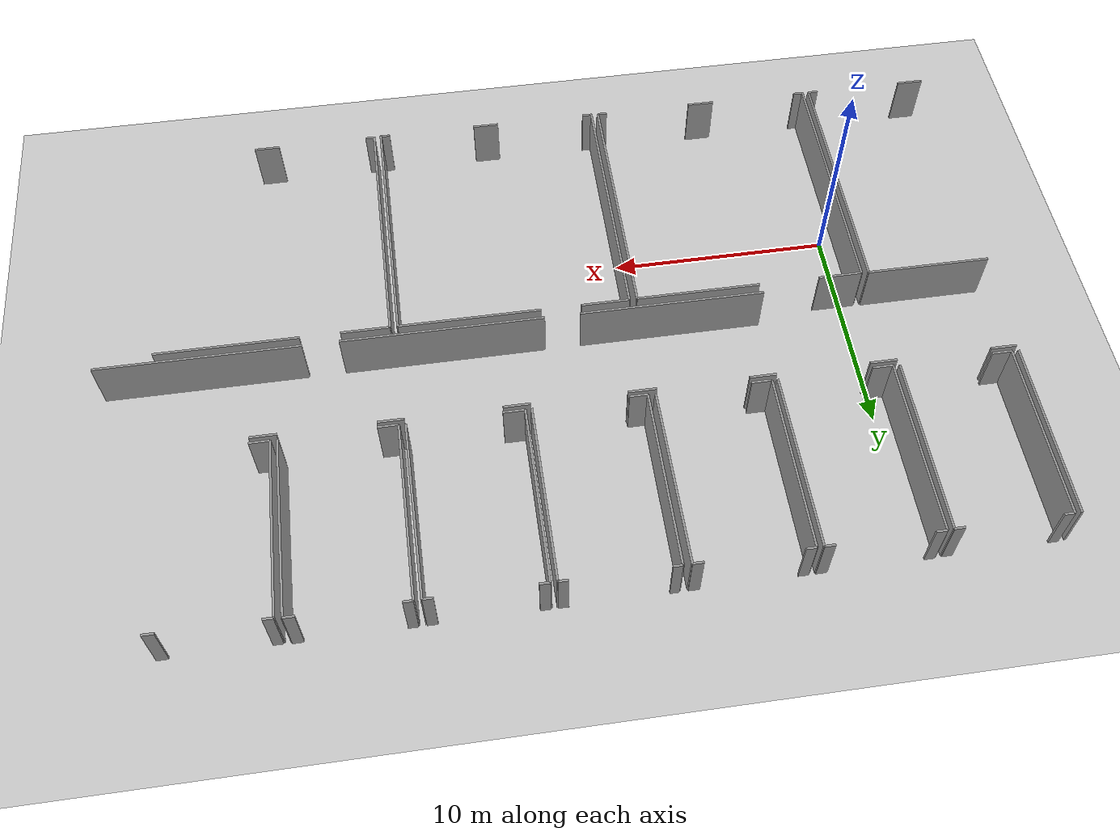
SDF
<sdf version="1.6">
 <world name="default">
  <model name="ground_plane">
   <static>1</static>
   <link name="link">
    <collision name="collision">
     <geometry><plane><normal>0 0 1</normal><size>100 100</size></plane></geometry>
     <surface><friction><ode><mu>100</mu><mu2>50</mu2></ode></friction></surface>
    </collision>
    <visual name="visual">
     <cast_shadows>0</cast_shadows>
     <geometry><plane><normal>0 0 1</normal><size>100 100</size></plane></geometry>
     <material>
      <script><uri>file://media/materials/scripts/gazebo.material</uri><name>Gazebo/Grey</name></script>
     </material>
    </visual>
   </link>
  </model>
  <model name="50037765_PLAN3">
   <static>1</static>
   <link name="Wall_163">
    <collision name="Wall_163_Collision">
     <geometry><box><size>1.17685185774 0.1 2.5</size></box></geometry>
     <pose>0.588425928868 0 1.25 0 0 0</pose>
    </collision>
    <visual name="Wall_163_Visual">
     <pose>0.588425928868 0 1.25 0 0 0</pose>
     <geometry><box><size>1.17685185774 0.1 2.5</size></box></geometry>
     <material>
      <script><uri>file://media/materials/scripts/gazebo.material</uri><name>Gazebo/Grey</name></script>
      <ambient>1 1 1 1</ambient>
     </material>
    </visual>
    <pose>162.93330961 -12.5559926034 0 0 0 3.14159265359</pose>
   </link>
   <link name="Wall_164">
    <collision name="Wall_164_Collision">
     <geometry><box><size>1.16490541339 0.1 2.5</size></box></geometry>
     <pose>0.582452706696 0 1.25 0 0 0</pose>
    </collision>
    <visual name="Wall_164_Visual">
     <pose>0.582452706696 0 1.25 0 0 0</pose>
     <geometry><box><size>1.16490541339 0.1 2.5</size></box></geometry>
     <material>
      <script><uri>file://media/materials/scripts/gazebo.material</uri><name>Gazebo/Grey</name></script>
      <ambient>1 1 1 1</ambient>
     </material>
    </visual>
    <pose>157.522332861 -12.5559926034 0 0 0 3.14159265359</pose>
   </link>
   <link name="Wall_165">
    <collision name="Wall_165_Collision">
     <geometry><box><size>1.20049056676 0.1 2.5</size></box></geometry>
     <pose>0.600245283379 0 1.25 0 0 0</pose>
    </collision>
    <visual name="Wall_165_Visual">
     <pose>0.600245283379 0 1.25 0 0 0</pose>
     <geometry><box><size>1.20049056676 0.1 2.5</size></box></geometry>
     <material>
      <script><uri>file://media/materials/scripts/gazebo.material</uri><name>Gazebo/Grey</name></script>
      <ambient>1 1 1 1</ambient>
     </material>
    </visual>
    <pose>152.12838615 -12.5559926034 0 0 0 3.14159265359</pose>
   </link>
   <link name="Wall_166">
    <collision name="Wall_166_Collision">
     <geometry><box><size>1.26428966315 0.1 2.5</size></box></geometry>
     <pose>0.632144831574 0 1.25 0 0 0</pose>
    </collision>
    <visual name="Wall_166_Visual">
     <pose>0.632144831574 0 1.25 0 0 0</pose>
     <geometry><box><size>1.26428966315 0.1 2.5</size></box></geometry>
     <material>
      <script><uri>file://media/materials/scripts/gazebo.material</uri><name>Gazebo/Grey</name></script>
      <ambient>1 1 1 1</ambient>
     </material>
    </visual>
    <pose>146.70266698 -12.5559926034 0 0 0 3.14159265359</pose>
   </link>
   <link name="Wall_167">
    <collision name="Wall_167_Collision">
     <geometry><box><size>1.19769459042 0.1 2.5</size></box></geometry>
     <pose>0.598847295211 0 1.25 0 0 0</pose>
    </collision>
    <visual name="Wall_167_Visual">
     <pose>0.598847295211 0 1.25 0 0 0</pose>
     <geometry><box><size>1.19769459042 0.1 2.5</size></box></geometry>
     <material>
      <script><uri>file://media/materials/scripts/gazebo.material</uri><name>Gazebo/Grey</name></script>
      <ambient>1 1 1 1</ambient>
     </material>
    </visual>
    <pose>141.335663314 -12.5559926034 0 0 0 3.14159265359</pose>
   </link>
   <link name="Wall_168">
    <collision name="Wall_168_Collision">
     <geometry><box><size>1.21980822144 0.1 2.5</size></box></geometry>
     <pose>0.609904110721 0 1.25 0 0 0</pose>
    </collision>
    <visual name="Wall_168_Visual">
     <pose>0.609904110721 0 1.25 0 0 0</pose>
     <geometry><box><size>1.21980822144 0.1 2.5</size></box></geometry>
     <material>
      <script><uri>file://media/materials/scripts/gazebo.material</uri><name>Gazebo/Grey</name></script>
      <ambient>1 1 1 1</ambient>
     </material>
    </visual>
    <pose>135.95112125 -12.5559926034 0 0 0 3.14159265359</pose>
   </link>
   <link name="Wall_169">
    <collision name="Wall_169_Collision">
     <geometry><box><size>1.16439705406 0.1 2.5</size></box></geometry>
     <pose>0.582198527029 0 1.25 0 0 0</pose>
    </collision>
    <visual name="Wall_169_Visual">
     <pose>0.582198527029 0 1.25 0 0 0</pose>
     <geometry><box><size>1.16439705406 0.1 2.5</size></box></geometry>
     <material>
      <script><uri>file://media/materials/scripts/gazebo.material</uri><name>Gazebo/Grey</name></script>
      <ambient>1 1 1 1</ambient>
     </material>
    </visual>
    <pose>130.471261811 -12.5559926034 0 0 0 3.14159265359</pose>
   </link>
   <link name="Wall_180">
    <collision name="Wall_180_Collision">
     <geometry><box><size>8.41436369298 0.1 2.5</size></box></geometry>
     <pose>4.20718184649 0 1.25 0 0 0</pose>
    </collision>
    <visual name="Wall_180_Visual">
     <pose>4.20718184649 0 1.25 0 0 0</pose>
     <geometry><box><size>8.41436369298 0.1 2.5</size></box></geometry>
     <material>
      <script><uri>file://media/materials/scripts/gazebo.material</uri><name>Gazebo/Grey</name></script>
      <ambient>1 1 1 1</ambient>
     </material>
    </visual>
    <pose>139.712471961 -16.9823789946 0 0 0 0.0</pose>
   </link>
   <link name="Wall_181">
    <collision name="Wall_181_Collision">
     <geometry><box><size>9.18706988034 0.1 2.5</size></box></geometry>
     <pose>4.59353494017 0 1.25 0 0 0</pose>
    </collision>
    <visual name="Wall_181_Visual">
     <pose>4.59353494017 0 1.25 0 0 0</pose>
     <geometry><box><size>9.18706988034 0.1 2.5</size></box></geometry>
     <material>
      <script><uri>file://media/materials/scripts/gazebo.material</uri><name>Gazebo/Grey</name></script>
      <ambient>1 1 1 1</ambient>
     </material>
    </visual>
    <pose>149.740114 -16.9823789946 0 0 0 0.0</pose>
   </link>
   <link name="Wall_182">
    <collision name="Wall_182_Collision">
     <geometry><box><size>9.15351816431 0.1 2.5</size></box></geometry>
     <pose>4.57675908216 0 1.25 0 0 0</pose>
    </collision>
    <visual name="Wall_182_Visual">
     <pose>4.57675908216 0 1.25 0 0 0</pose>
     <geometry><box><size>9.15351816431 0.1 2.5</size></box></geometry>
     <material>
      <script><uri>file://media/materials/scripts/gazebo.material</uri><name>Gazebo/Grey</name></script>
      <ambient>1 1 1 1</ambient>
     </material>
    </visual>
    <pose>160.566388552 -16.9823789946 0 0 0 0.0</pose>
   </link>
   <link name="Wall_203">
    <collision name="Wall_203_Collision">
     <geometry><box><size>8.07875446143 0.1 2.5</size></box></geometry>
     <pose>4.03937723072 0 1.25 0 0 0</pose>
    </collision>
    <visual name="Wall_203_Visual">
     <pose>4.03937723072 0 1.25 0 0 0</pose>
     <geometry><box><size>8.07875446143 0.1 2.5</size></box></geometry>
     <material>
      <script><uri>file://media/materials/scripts/gazebo.material</uri><name>Gazebo/Grey</name></script>
      <ambient>1 1 1 1</ambient>
     </material>
    </visual>
    <pose>129.315252686 -4.21399386156 0 0 0 -1.57233800115</pose>
   </link>
   <link name="Wall_204">
    <collision name="Wall_204_Collision">
     <geometry><box><size>0.897254224148 0.1 2.5</size></box></geometry>
     <pose>0.448627112074 0 1.25 0 0 0</pose>
    </collision>
    <visual name="Wall_204_Visual">
     <pose>0.448627112074 0 1.25 0 0 0</pose>
     <geometry><box><size>0.897254224148 0.1 2.5</size></box></geometry>
     <material>
      <script><uri>file://media/materials/scripts/gazebo.material</uri><name>Gazebo/Grey</name></script>
      <ambient>1 1 1 1</ambient>
     </material>
    </visual>
    <pose>130.506084426 -12.2932979176 0 0 0 3.14159265359</pose>
   </link>
   <link name="Wall_205">
    <collision name="Wall_205_Collision">
     <geometry><box><size>8.06018974512 0.1 2.5</size></box></geometry>
     <pose>4.03009487256 0 1.25 0 0 0</pose>
    </collision>
    <visual name="Wall_205_Visual">
     <pose>4.03009487256 0 1.25 0 0 0</pose>
     <geometry><box><size>8.06018974512 0.1 2.5</size></box></geometry>
     <material>
      <script><uri>file://media/materials/scripts/gazebo.material</uri><name>Gazebo/Grey</name></script>
      <ambient>1 1 1 1</ambient>
     </material>
    </visual>
    <pose>129.608830202 -12.2932979176 0 0 0 1.57079632679</pose>
   </link>
   <link name="Wall_206">
    <collision name="Wall_206_Collision">
     <geometry><box><size>0.451931447744 0.1 2.5</size></box></geometry>
     <pose>0.225965723872 0 1.25 0 0 0</pose>
    </collision>
    <visual name="Wall_206_Visual">
     <pose>0.225965723872 0 1.25 0 0 0</pose>
     <geometry><box><size>0.451931447744 0.1 2.5</size></box></geometry>
     <material>
      <script><uri>file://media/materials/scripts/gazebo.material</uri><name>Gazebo/Grey</name></script>
      <ambient>1 1 1 1</ambient>
     </material>
    </visual>
    <pose>129.608830202 -4.23310817251 0 0 0 0.0</pose>
   </link>
   <link name="Wall_207">
    <collision name="Wall_207_Collision">
     <geometry><box><size>0.468453126092 0.1 2.5</size></box></geometry>
     <pose>0.234226563046 0 1.25 0 0 0</pose>
    </collision>
    <visual name="Wall_207_Visual">
     <pose>0.234226563046 0 1.25 0 0 0</pose>
     <geometry><box><size>0.468453126092 0.1 2.5</size></box></geometry>
     <material>
      <script><uri>file://media/materials/scripts/gazebo.material</uri><name>Gazebo/Grey</name></script>
      <ambient>1 1 1 1</ambient>
     </material>
    </visual>
    <pose>134.22676639 -4.23310817251 0 0 0 0.0</pose>
   </link>
   <link name="Wall_208">
    <collision name="Wall_208_Collision">
     <geometry><box><size>8.02666344706 0.1 2.5</size></box></geometry>
     <pose>4.01333172353 0 1.25 0 0 0</pose>
    </collision>
    <visual name="Wall_208_Visual">
     <pose>4.01333172353 0 1.25 0 0 0</pose>
     <geometry><box><size>8.02666344706 0.1 2.5</size></box></geometry>
     <material>
      <script><uri>file://media/materials/scripts/gazebo.material</uri><name>Gazebo/Grey</name></script>
      <ambient>1 1 1 1</ambient>
     </material>
    </visual>
    <pose>134.695219516 -4.23310817251 0 0 0 -1.57079632679</pose>
   </link>
   <link name="Wall_209">
    <collision name="Wall_209_Collision">
     <geometry><box><size>0.930043401178 0.1 2.5</size></box></geometry>
     <pose>0.465021700589 0 1.25 0 0 0</pose>
    </collision>
    <visual name="Wall_209_Visual">
     <pose>0.465021700589 0 1.25 0 0 0</pose>
     <geometry><box><size>0.930043401178 0.1 2.5</size></box></geometry>
     <material>
      <script><uri>file://media/materials/scripts/gazebo.material</uri><name>Gazebo/Grey</name></script>
      <ambient>1 1 1 1</ambient>
     </material>
    </visual>
    <pose>135.919348792 -12.2932979176 0 0 0 3.14159265359</pose>
   </link>
   <link name="Wall_210">
    <collision name="Wall_210_Collision">
     <geometry><box><size>8.08781907491 0.1 2.5</size></box></geometry>
     <pose>4.04390953746 0 1.25 0 0 0</pose>
    </collision>
    <visual name="Wall_210_Visual">
     <pose>4.04390953746 0 1.25 0 0 0</pose>
     <geometry><box><size>8.08781907491 0.1 2.5</size></box></geometry>
     <material>
      <script><uri>file://media/materials/scripts/gazebo.material</uri><name>Gazebo/Grey</name></script>
      <ambient>1 1 1 1</ambient>
     </material>
    </visual>
    <pose>134.989305391 -12.2932979176 0 0 0 1.57079632679</pose>
   </link>
   <link name="Wall_211">
    <collision name="Wall_211_Collision">
     <geometry><box><size>0.470740743094 0.1 2.5</size></box></geometry>
     <pose>0.235370371547 0 1.25 0 0 0</pose>
    </collision>
    <visual name="Wall_211_Visual">
     <pose>0.235370371547 0 1.25 0 0 0</pose>
     <geometry><box><size>0.470740743094 0.1 2.5</size></box></geometry>
     <material>
      <script><uri>file://media/materials/scripts/gazebo.material</uri><name>Gazebo/Grey</name></script>
      <ambient>1 1 1 1</ambient>
     </material>
    </visual>
    <pose>134.989305391 -4.20547884272 0 0 0 0.0</pose>
   </link>
   <link name="Wall_212">
    <collision name="Wall_212_Collision">
     <geometry><box><size>0.480145390769 0.1 2.5</size></box></geometry>
     <pose>0.240072695385 0 1.25 0 0 0</pose>
    </collision>
    <visual name="Wall_212_Visual">
     <pose>0.240072695385 0 1.25 0 0 0</pose>
     <geometry><box><size>0.480145390769 0.1 2.5</size></box></geometry>
     <material>
      <script><uri>file://media/materials/scripts/gazebo.material</uri><name>Gazebo/Grey</name></script>
      <ambient>1 1 1 1</ambient>
     </material>
    </visual>
    <pose>139.617662945 -4.20547884272 0 0 0 0.0</pose>
   </link>
   <link name="Wall_213">
    <collision name="Wall_213_Collision">
     <geometry><box><size>8.08797724418 0.1 2.5</size></box></geometry>
     <pose>4.04398862209 0 1.25 0 0 0</pose>
    </collision>
    <visual name="Wall_213_Visual">
     <pose>4.04398862209 0 1.25 0 0 0</pose>
     <geometry><box><size>8.08797724418 0.1 2.5</size></box></geometry>
     <material>
      <script><uri>file://media/materials/scripts/gazebo.material</uri><name>Gazebo/Grey</name></script>
      <ambient>1 1 1 1</ambient>
     </material>
    </visual>
    <pose>140.097808336 -4.20547884272 0 0 0 -1.5645423424</pose>
   </link>
   <link name="Wall_214">
    <collision name="Wall_214_Collision">
     <geometry><box><size>0.909963207493 0.1 2.5</size></box></geometry>
     <pose>0.454981603747 0 1.25 0 0 0</pose>
    </collision>
    <visual name="Wall_214_Visual">
     <pose>0.454981603747 0 1.25 0 0 0</pose>
     <geometry><box><size>0.909963207493 0.1 2.5</size></box></geometry>
     <material>
      <script><uri>file://media/materials/scripts/gazebo.material</uri><name>Gazebo/Grey</name></script>
      <ambient>1 1 1 1</ambient>
     </material>
    </visual>
    <pose>141.311007886 -12.2817581608 0 0 0 3.14159265359</pose>
   </link>
   <link name="Wall_215">
    <collision name="Wall_215_Collision">
     <geometry><box><size>8.0768385133 0.1 2.5</size></box></geometry>
     <pose>4.03841925665 0 1.25 0 0 0</pose>
    </collision>
    <visual name="Wall_215_Visual">
     <pose>4.03841925665 0 1.25 0 0 0</pose>
     <geometry><box><size>8.0768385133 0.1 2.5</size></box></geometry>
     <material>
      <script><uri>file://media/materials/scripts/gazebo.material</uri><name>Gazebo/Grey</name></script>
      <ambient>1 1 1 1</ambient>
     </material>
    </visual>
    <pose>140.401044678 -12.2817581608 0 0 0 1.57079632679</pose>
   </link>
   <link name="Wall_216">
    <collision name="Wall_216_Collision">
     <geometry><box><size>0.451168908743 0.1 2.5</size></box></geometry>
     <pose>0.225584454372 0 1.25 0 0 0</pose>
    </collision>
    <visual name="Wall_216_Visual">
     <pose>0.225584454372 0 1.25 0 0 0</pose>
     <geometry><box><size>0.451168908743 0.1 2.5</size></box></geometry>
     <material>
      <script><uri>file://media/materials/scripts/gazebo.material</uri><name>Gazebo/Grey</name></script>
      <ambient>1 1 1 1</ambient>
     </material>
    </visual>
    <pose>140.401044678 -4.20491964745 0 0 0 0.0</pose>
   </link>
   <link name="Wall_217">
    <collision name="Wall_217_Collision">
     <geometry><box><size>0.483449726439 0.1 2.5</size></box></geometry>
     <pose>0.24172486322 0 1.25 0 0 0</pose>
    </collision>
    <visual name="Wall_217_Visual">
     <pose>0.24172486322 0 1.25 0 0 0</pose>
     <geometry><box><size>0.483449726439 0.1 2.5</size></box></geometry>
     <material>
      <script><uri>file://media/materials/scripts/gazebo.material</uri><name>Gazebo/Grey</name></script>
      <ambient>1 1 1 1</ambient>
     </material>
    </visual>
    <pose>145.006017704 -4.20491964745 0 0 0 0.0</pose>
   </link>
   <link name="Wall_218">
    <collision name="Wall_218_Collision">
     <geometry><box><size>8.0769582147 0.1 2.5</size></box></geometry>
     <pose>4.03847910735 0 1.25 0 0 0</pose>
    </collision>
    <visual name="Wall_218_Visual">
     <pose>4.03847910735 0 1.25 0 0 0</pose>
     <geometry><box><size>8.0769582147 0.1 2.5</size></box></geometry>
     <material>
      <script><uri>file://media/materials/scripts/gazebo.material</uri><name>Gazebo/Grey</name></script>
      <ambient>1 1 1 1</ambient>
     </material>
    </visual>
    <pose>145.48946743 -4.20491964745 0 0 0 -1.5653520372</pose>
   </link>
   <link name="Wall_219">
    <collision name="Wall_219_Collision">
     <geometry><box><size>0.813120754405 0.1 2.5</size></box></geometry>
     <pose>0.406560377203 0 1.25 0 0 0</pose>
    </collision>
    <visual name="Wall_219_Visual">
     <pose>0.406560377203 0 1.25 0 0 0</pose>
     <geometry><box><size>0.813120754405 0.1 2.5</size></box></geometry>
     <material>
      <script><uri>file://media/materials/scripts/gazebo.material</uri><name>Gazebo/Grey</name></script>
      <ambient>1 1 1 1</ambient>
     </material>
    </visual>
    <pose>146.676232295 -12.3185633765 0 0 0 3.14159265359</pose>
   </link>
   <link name="Wall_220">
    <collision name="Wall_220_Collision">
     <geometry><box><size>8.12368382591 0.1 2.5</size></box></geometry>
     <pose>4.06184191296 0 1.25 0 0 0</pose>
    </collision>
    <visual name="Wall_220_Visual">
     <pose>4.06184191296 0 1.25 0 0 0</pose>
     <geometry><box><size>8.12368382591 0.1 2.5</size></box></geometry>
     <material>
      <script><uri>file://media/materials/scripts/gazebo.material</uri><name>Gazebo/Grey</name></script>
      <ambient>1 1 1 1</ambient>
     </material>
    </visual>
    <pose>145.86311154 -12.3185633765 0 0 0 1.57079632679</pose>
   </link>
   <link name="Wall_221">
    <collision name="Wall_221_Collision">
     <geometry><box><size>0.403637311033 0.1 2.5</size></box></geometry>
     <pose>0.201818655517 0 1.25 0 0 0</pose>
    </collision>
    <visual name="Wall_221_Visual">
     <pose>0.201818655517 0 1.25 0 0 0</pose>
     <geometry><box><size>0.403637311033 0.1 2.5</size></box></geometry>
     <material>
      <script><uri>file://media/materials/scripts/gazebo.material</uri><name>Gazebo/Grey</name></script>
      <ambient>1 1 1 1</ambient>
     </material>
    </visual>
    <pose>145.86311154 -4.19487955061 0 0 0 0.0</pose>
   </link>
   <link name="Wall_222">
    <collision name="Wall_222_Collision">
     <geometry><box><size>0.448881291741 0.1 2.5</size></box></geometry>
     <pose>0.224440645871 0 1.25 0 0 0</pose>
    </collision>
    <visual name="Wall_222_Visual">
     <pose>0.224440645871 0 1.25 0 0 0</pose>
     <geometry><box><size>0.448881291741 0.1 2.5</size></box></geometry>
     <material>
      <script><uri>file://media/materials/scripts/gazebo.material</uri><name>Gazebo/Grey</name></script>
      <ambient>1 1 1 1</ambient>
     </material>
    </visual>
    <pose>150.452325426 -4.19487955061 0 0 0 0.0</pose>
   </link>
   <link name="Wall_223">
    <collision name="Wall_223_Collision">
     <geometry><box><size>8.12369585475 0.1 2.5</size></box></geometry>
     <pose>4.06184792737 0 1.25 0 0 0</pose>
    </collision>
    <visual name="Wall_223_Visual">
     <pose>4.06184792737 0 1.25 0 0 0</pose>
     <geometry><box><size>8.12369585475 0.1 2.5</size></box></geometry>
     <material>
      <script><uri>file://media/materials/scripts/gazebo.material</uri><name>Gazebo/Grey</name></script>
      <ambient>1 1 1 1</ambient>
     </material>
    </visual>
    <pose>150.901206718 -4.19487955061 0 0 0 -1.56907544891</pose>
   </link>
   <link name="Wall_224">
    <collision name="Wall_224_Collision">
     <geometry><box><size>0.973762303884 0.1 2.5</size></box></geometry>
     <pose>0.486881151942 0 1.25 0 0 0</pose>
    </collision>
    <visual name="Wall_224_Visual">
     <pose>0.486881151942 0 1.25 0 0 0</pose>
     <geometry><box><size>0.973762303884 0.1 2.5</size></box></geometry>
     <material>
      <script><uri>file://media/materials/scripts/gazebo.material</uri><name>Gazebo/Grey</name></script>
      <ambient>1 1 1 1</ambient>
     </material>
    </visual>
    <pose>152.167021459 -12.288443086 0 0 0 3.14159265359</pose>
   </link>
   <link name="Wall_225">
    <collision name="Wall_225_Collision">
     <geometry><box><size>8.09450400015 0.1 2.5</size></box></geometry>
     <pose>4.04725200008 0 1.25 0 0 0</pose>
    </collision>
    <visual name="Wall_225_Visual">
     <pose>4.04725200008 0 1.25 0 0 0</pose>
     <geometry><box><size>8.09450400015 0.1 2.5</size></box></geometry>
     <material>
      <script><uri>file://media/materials/scripts/gazebo.material</uri><name>Gazebo/Grey</name></script>
      <ambient>1 1 1 1</ambient>
     </material>
    </visual>
    <pose>151.193259155 -12.288443086 0 0 0 1.57079632679</pose>
   </link>
   <link name="Wall_226">
    <collision name="Wall_226_Collision">
     <geometry><box><size>0.450152190076 0.1 2.5</size></box></geometry>
     <pose>0.225076095038 0 1.25 0 0 0</pose>
    </collision>
    <visual name="Wall_226_Visual">
     <pose>0.225076095038 0 1.25 0 0 0</pose>
     <geometry><box><size>0.450152190076 0.1 2.5</size></box></geometry>
     <material>
      <script><uri>file://media/materials/scripts/gazebo.material</uri><name>Gazebo/Grey</name></script>
      <ambient>1 1 1 1</ambient>
     </material>
    </visual>
    <pose>151.193259155 -4.19393908584 0 0 0 0.0</pose>
   </link>
   <link name="Wall_227">
    <collision name="Wall_227_Collision">
     <geometry><box><size>0.461590275086 0.1 2.5</size></box></geometry>
     <pose>0.230795137543 0 1.25 0 0 0</pose>
    </collision>
    <visual name="Wall_227_Visual">
     <pose>0.230795137543 0 1.25 0 0 0</pose>
     <geometry><box><size>0.461590275086 0.1 2.5</size></box></geometry>
     <material>
      <script><uri>file://media/materials/scripts/gazebo.material</uri><name>Gazebo/Grey</name></script>
      <ambient>1 1 1 1</ambient>
     </material>
    </visual>
    <pose>155.819074913 -4.19393908584 0 0 0 0.0</pose>
   </link>
   <link name="Wall_228">
    <collision name="Wall_228_Collision">
     <geometry><box><size>8.09459620337 0.1 2.5</size></box></geometry>
     <pose>4.04729810169 0 1.25 0 0 0</pose>
    </collision>
    <visual name="Wall_228_Visual">
     <pose>4.04729810169 0 1.25 0 0 0</pose>
     <geometry><box><size>8.09459620337 0.1 2.5</size></box></geometry>
     <material>
      <script><uri>file://media/materials/scripts/gazebo.material</uri><name>Gazebo/Grey</name></script>
      <ambient>1 1 1 1</ambient>
     </material>
    </visual>
    <pose>156.280665188 -4.19393908584 0 0 0 -1.56602333317</pose>
   </link>
   <link name="Wall_229">
    <collision name="Wall_229_Collision">
     <geometry><box><size>0.909963207493 0.1 2.5</size></box></geometry>
     <pose>0.454981603747 0 1.25 0 0 0</pose>
    </collision>
    <visual name="Wall_229_Visual">
     <pose>0.454981603747 0 1.25 0 0 0</pose>
     <geometry><box><size>0.909963207493 0.1 2.5</size></box></geometry>
     <material>
      <script><uri>file://media/materials/scripts/gazebo.material</uri><name>Gazebo/Grey</name></script>
      <ambient>1 1 1 1</ambient>
     </material>
    </visual>
    <pose>157.524620478 -12.3059306471 0 0 0 3.14159265359</pose>
   </link>
   <link name="Wall_230">
    <collision name="Wall_230_Collision">
     <geometry><box><size>8.12060825194 0.1 2.5</size></box></geometry>
     <pose>4.06030412597 0 1.25 0 0 0</pose>
    </collision>
    <visual name="Wall_230_Visual">
     <pose>4.06030412597 0 1.25 0 0 0</pose>
     <geometry><box><size>8.12060825194 0.1 2.5</size></box></geometry>
     <material>
      <script><uri>file://media/materials/scripts/gazebo.material</uri><name>Gazebo/Grey</name></script>
      <ambient>1 1 1 1</ambient>
     </material>
    </visual>
    <pose>156.61465727 -12.3059306471 0 0 0 1.57079632679</pose>
   </link>
   <link name="Wall_231">
    <collision name="Wall_231_Collision">
     <geometry><box><size>0.430834535391 0.1 2.5</size></box></geometry>
     <pose>0.215417267696 0 1.25 0 0 0</pose>
    </collision>
    <visual name="Wall_231_Visual">
     <pose>0.215417267696 0 1.25 0 0 0</pose>
     <geometry><box><size>0.430834535391 0.1 2.5</size></box></geometry>
     <material>
      <script><uri>file://media/materials/scripts/gazebo.material</uri><name>Gazebo/Grey</name></script>
      <ambient>1 1 1 1</ambient>
     </material>
    </visual>
    <pose>156.61465727 -4.18532239514 0 0 0 0.0</pose>
   </link>
   <link name="Wall_232">
    <collision name="Wall_232_Collision">
     <geometry><box><size>0.487262421443 0.1 2.5</size></box></geometry>
     <pose>0.243631210721 0 1.25 0 0 0</pose>
    </collision>
    <visual name="Wall_232_Visual">
     <pose>0.243631210721 0 1.25 0 0 0</pose>
     <geometry><box><size>0.487262421443 0.1 2.5</size></box></geometry>
     <material>
      <script><uri>file://media/materials/scripts/gazebo.material</uri><name>Gazebo/Grey</name></script>
      <ambient>1 1 1 1</ambient>
     </material>
    </visual>
    <pose>161.230814201 -4.18532239514 0 0 0 0.0</pose>
   </link>
   <link name="Wall_233">
    <collision name="Wall_233_Collision">
     <geometry><box><size>8.12065379576 0.1 2.5</size></box></geometry>
     <pose>4.06032689788 0 1.25 0 0 0</pose>
    </collision>
    <visual name="Wall_233_Visual">
     <pose>4.06032689788 0 1.25 0 0 0</pose>
     <geometry><box><size>8.12065379576 0.1 2.5</size></box></geometry>
     <material>
      <script><uri>file://media/materials/scripts/gazebo.material</uri><name>Gazebo/Grey</name></script>
      <ambient>1 1 1 1</ambient>
     </material>
    </visual>
    <pose>161.718076622 -4.18532239514 0 0 0 -1.56744717833</pose>
   </link>
   <link name="Wall_234">
    <collision name="Wall_234_Collision">
     <geometry><box><size>0.901066919152 0.1 2.5</size></box></geometry>
     <pose>0.450533459576 0 1.25 0 0 0</pose>
    </collision>
    <visual name="Wall_234_Visual">
     <pose>0.450533459576 0 1.25 0 0 0</pose>
     <geometry><box><size>0.901066919152 0.1 2.5</size></box></geometry>
     <material>
      <script><uri>file://media/materials/scripts/gazebo.material</uri><name>Gazebo/Grey</name></script>
      <ambient>1 1 1 1</ambient>
     </material>
    </visual>
    <pose>162.950848007 -12.2817581608 0 0 0 3.14159265359</pose>
   </link>
   <link name="Wall_235">
    <collision name="Wall_235_Collision">
     <geometry><box><size>8.05820714372 0.1 2.5</size></box></geometry>
     <pose>4.02910357186 0 1.25 0 0 0</pose>
    </collision>
    <visual name="Wall_235_Visual">
     <pose>4.02910357186 0 1.25 0 0 0</pose>
     <geometry><box><size>8.05820714372 0.1 2.5</size></box></geometry>
     <material>
      <script><uri>file://media/materials/scripts/gazebo.material</uri><name>Gazebo/Grey</name></script>
      <ambient>1 1 1 1</ambient>
     </material>
    </visual>
    <pose>162.049781088 -12.2817581608 0 0 0 1.57079632679</pose>
   </link>
   <link name="Wall_236">
    <collision name="Wall_236_Collision">
     <geometry><box><size>0.442526800069 0.1 2.5</size></box></geometry>
     <pose>0.221263400034 0 1.25 0 0 0</pose>
    </collision>
    <visual name="Wall_236_Visual">
     <pose>0.221263400034 0 1.25 0 0 0</pose>
     <geometry><box><size>0.442526800069 0.1 2.5</size></box></geometry>
     <material>
      <script><uri>file://media/materials/scripts/gazebo.material</uri><name>Gazebo/Grey</name></script>
      <ambient>1 1 1 1</ambient>
     </material>
    </visual>
    <pose>162.049781088 -4.22355101704 0 0 0 0.0</pose>
   </link>
   <link name="Wall_237">
    <collision name="Wall_237_Collision">
     <geometry><box><size>0.515984723802 0.1 2.5</size></box></geometry>
     <pose>0.257992361901 0 1.25 0 0 0</pose>
    </collision>
    <visual name="Wall_237_Visual">
     <pose>0.257992361901 0 1.25 0 0 0</pose>
     <geometry><box><size>0.515984723802 0.1 2.5</size></box></geometry>
     <material>
      <script><uri>file://media/materials/scripts/gazebo.material</uri><name>Gazebo/Grey</name></script>
      <ambient>1 1 1 1</ambient>
     </material>
    </visual>
    <pose>166.620185678 -4.22355101704 0 0 0 0.0</pose>
   </link>
   <link name="Wall_261">
    <collision name="Wall_261_Collision">
     <geometry><box><size>1.17990201374 0.1 2.5</size></box></geometry>
     <pose>0.589951006869 0 1.25 0 0 0</pose>
    </collision>
    <visual name="Wall_261_Visual">
     <pose>0.589951006869 0 1.25 0 0 0</pose>
     <geometry><box><size>1.17990201374 0.1 2.5</size></box></geometry>
     <material>
      <script><uri>file://media/materials/scripts/gazebo.material</uri><name>Gazebo/Grey</name></script>
      <ambient>1 1 1 1</ambient>
     </material>
    </visual>
    <pose>162.463077226 -28.9865221232 0 0 0 3.14159265359</pose>
   </link>
   <link name="Wall_262">
    <collision name="Wall_262_Collision">
     <geometry><box><size>0.423971684385 0.1 2.5</size></box></geometry>
     <pose>0.211985842193 0 1.25 0 0 0</pose>
    </collision>
    <visual name="Wall_262_Visual">
     <pose>0.211985842193 0 1.25 0 0 0</pose>
     <geometry><box><size>0.423971684385 0.1 2.5</size></box></geometry>
     <material>
      <script><uri>file://media/materials/scripts/gazebo.material</uri><name>Gazebo/Grey</name></script>
      <ambient>1 1 1 1</ambient>
     </material>
    </visual>
    <pose>157.062267664 -28.9865221232 0 0 0 3.14159265359</pose>
   </link>
   <link name="Wall_263">
    <collision name="Wall_263_Collision">
     <geometry><box><size>11.5572952742 0.1 2.5</size></box></geometry>
     <pose>5.77864763708 0 1.25 0 0 0</pose>
    </collision>
    <visual name="Wall_263_Visual">
     <pose>5.77864763708 0 1.25 0 0 0</pose>
     <geometry><box><size>11.5572952742 0.1 2.5</size></box></geometry>
     <material>
      <script><uri>file://media/materials/scripts/gazebo.material</uri><name>Gazebo/Grey</name></script>
      <ambient>1 1 1 1</ambient>
     </material>
    </visual>
    <pose>156.63829598 -28.9865221232 0 0 0 1.57079632679</pose>
   </link>
   <link name="Wall_264">
    <collision name="Wall_264_Collision">
     <geometry><box><size>2.203737712 0.1 2.5</size></box></geometry>
     <pose>1.101868856 0 1.25 0 0 0</pose>
    </collision>
    <visual name="Wall_264_Visual">
     <pose>1.101868856 0 1.25 0 0 0</pose>
     <geometry><box><size>2.203737712 0.1 2.5</size></box></geometry>
     <material>
      <script><uri>file://media/materials/scripts/gazebo.material</uri><name>Gazebo/Grey</name></script>
      <ambient>1 1 1 1</ambient>
     </material>
    </visual>
    <pose>156.63829598 -17.429226849 0 0 0 0.0</pose>
   </link>
   <link name="Wall_265">
    <collision name="Wall_265_Collision">
     <geometry><box><size>6.43964186085 0.1 2.5</size></box></geometry>
     <pose>3.21982093042 0 1.25 0 0 0</pose>
    </collision>
    <visual name="Wall_265_Visual">
     <pose>3.21982093042 0 1.25 0 0 0</pose>
     <geometry><box><size>6.43964186085 0.1 2.5</size></box></geometry>
     <material>
      <script><uri>file://media/materials/scripts/gazebo.material</uri><name>Gazebo/Grey</name></script>
      <ambient>1 1 1 1</ambient>
     </material>
    </visual>
    <pose>160.654080537 -17.429226849 0 0 0 0.0</pose>
   </link>
   <link name="Wall_267">
    <collision name="Wall_267_Collision">
     <geometry><box><size>0.439476644066 0.1 2.5</size></box></geometry>
     <pose>0.219738322033 0 1.25 0 0 0</pose>
    </collision>
    <visual name="Wall_267_Visual">
     <pose>0.219738322033 0 1.25 0 0 0</pose>
     <geometry><box><size>0.439476644066 0.1 2.5</size></box></geometry>
     <material>
      <script><uri>file://media/materials/scripts/gazebo.material</uri><name>Gazebo/Grey</name></script>
      <ambient>1 1 1 1</ambient>
     </material>
    </visual>
    <pose>156.313454365 -29.0068564965 0 0 0 3.14159265359</pose>
   </link>
   <link name="Wall_268">
    <collision name="Wall_268_Collision">
     <geometry><box><size>1.20481162109 0.1 2.5</size></box></geometry>
     <pose>0.602405810547 0 1.25 0 0 0</pose>
    </collision>
    <visual name="Wall_268_Visual">
     <pose>0.602405810547 0 1.25 0 0 0</pose>
     <geometry><box><size>1.20481162109 0.1 2.5</size></box></geometry>
     <material>
      <script><uri>file://media/materials/scripts/gazebo.material</uri><name>Gazebo/Grey</name></script>
      <ambient>1 1 1 1</ambient>
     </material>
    </visual>
    <pose>151.719411066 -29.0068564965 0 0 0 3.14159265359</pose>
   </link>
   <link name="Wall_269">
    <collision name="Wall_269_Collision">
     <geometry><box><size>0.448627112074 0.1 2.5</size></box></geometry>
     <pose>0.224313556037 0 1.25 0 0 0</pose>
    </collision>
    <visual name="Wall_269_Visual">
     <pose>0.224313556037 0 1.25 0 0 0</pose>
     <geometry><box><size>0.448627112074 0.1 2.5</size></box></geometry>
     <material>
      <script><uri>file://media/materials/scripts/gazebo.material</uri><name>Gazebo/Grey</name></script>
      <ambient>1 1 1 1</ambient>
     </material>
    </visual>
    <pose>146.268528109 -29.0068564965 0 0 0 3.14159265359</pose>
   </link>
   <link name="Wall_270">
    <collision name="Wall_270_Collision">
     <geometry><box><size>11.5776296475 0.1 2.5</size></box></geometry>
     <pose>5.78881482376 0 1.25 0 0 0</pose>
    </collision>
    <visual name="Wall_270_Visual">
     <pose>5.78881482376 0 1.25 0 0 0</pose>
     <geometry><box><size>11.5776296475 0.1 2.5</size></box></geometry>
     <material>
      <script><uri>file://media/materials/scripts/gazebo.material</uri><name>Gazebo/Grey</name></script>
      <ambient>1 1 1 1</ambient>
     </material>
    </visual>
    <pose>145.819900997 -29.0068564965 0 0 0 1.57079632679</pose>
   </link>
   <link name="Wall_271">
    <collision name="Wall_271_Collision">
     <geometry><box><size>2.19560396266 0.1 2.5</size></box></geometry>
     <pose>1.09780198133 0 1.25 0 0 0</pose>
    </collision>
    <visual name="Wall_271_Visual">
     <pose>1.09780198133 0 1.25 0 0 0</pose>
     <geometry><box><size>2.19560396266 0.1 2.5</size></box></geometry>
     <material>
      <script><uri>file://media/materials/scripts/gazebo.material</uri><name>Gazebo/Grey</name></script>
      <ambient>1 1 1 1</ambient>
     </material>
    </visual>
    <pose>145.819900997 -17.429226849 0 0 0 0.0</pose>
   </link>
   <link name="Wall_272">
    <collision name="Wall_272_Collision">
     <geometry><box><size>6.44980904753 0.1 2.5</size></box></geometry>
     <pose>3.22490452376 0 1.25 0 0 0</pose>
    </collision>
    <visual name="Wall_272_Visual">
     <pose>3.22490452376 0 1.25 0 0 0</pose>
     <geometry><box><size>6.44980904753 0.1 2.5</size></box></geometry>
     <material>
      <script><uri>file://media/materials/scripts/gazebo.material</uri><name>Gazebo/Grey</name></script>
      <ambient>1 1 1 1</ambient>
     </material>
    </visual>
    <pose>149.841785866 -17.429226849 0 0 0 0.0</pose>
   </link>
   <link name="Wall_273">
    <collision name="Wall_273_Collision">
     <geometry><box><size>11.5776502837 0.1 2.5</size></box></geometry>
     <pose>5.78882514183 0 1.25 0 0 0</pose>
    </collision>
    <visual name="Wall_273_Visual">
     <pose>5.78882514183 0 1.25 0 0 0</pose>
     <geometry><box><size>11.5776502837 0.1 2.5</size></box></geometry>
     <material>
      <script><uri>file://media/materials/scripts/gazebo.material</uri><name>Gazebo/Grey</name></script>
      <ambient>1 1 1 1</ambient>
     </material>
    </visual>
    <pose>156.291594914 -17.429226849 0 0 0 -1.56890825246</pose>
   </link>
   <link name="Wall_274">
    <collision name="Wall_274_Collision">
     <geometry><box><size>0.435663949062 0.1 2.5</size></box></geometry>
     <pose>0.217831974531 0 1.25 0 0 0</pose>
    </collision>
    <visual name="Wall_274_Visual">
     <pose>0.217831974531 0 1.25 0 0 0</pose>
     <geometry><box><size>0.435663949062 0.1 2.5</size></box></geometry>
     <material>
      <script><uri>file://media/materials/scripts/gazebo.material</uri><name>Gazebo/Grey</name></script>
      <ambient>1 1 1 1</ambient>
     </material>
    </visual>
    <pose>145.492771766 -28.9916057165 0 0 0 3.14159265359</pose>
   </link>
   <link name="Wall_275">
    <collision name="Wall_275_Collision">
     <geometry><box><size>1.24268439146 0.1 2.5</size></box></geometry>
     <pose>0.621342195731 0 1.25 0 0 0</pose>
    </collision>
    <visual name="Wall_275_Visual">
     <pose>0.621342195731 0 1.25 0 0 0</pose>
     <geometry><box><size>1.24268439146 0.1 2.5</size></box></geometry>
     <material>
      <script><uri>file://media/materials/scripts/gazebo.material</uri><name>Gazebo/Grey</name></script>
      <ambient>1 1 1 1</ambient>
     </material>
    </visual>
    <pose>140.902541161 -28.9916057165 0 0 0 3.14159265359</pose>
   </link>
   <link name="Wall_276">
    <collision name="Wall_276_Collision">
     <geometry><box><size>0.44811875274 0.1 2.5</size></box></geometry>
     <pose>0.22405937637 0 1.25 0 0 0</pose>
    </collision>
    <visual name="Wall_276_Visual">
     <pose>0.22405937637 0 1.25 0 0 0</pose>
     <geometry><box><size>0.44811875274 0.1 2.5</size></box></geometry>
     <material>
      <script><uri>file://media/materials/scripts/gazebo.material</uri><name>Gazebo/Grey</name></script>
      <ambient>1 1 1 1</ambient>
     </material>
    </visual>
    <pose>135.483684843 -28.9916057165 0 0 0 3.14159265359</pose>
   </link>
   <link name="Wall_277">
    <collision name="Wall_277_Collision">
     <geometry><box><size>11.5476364468 0.1 2.5</size></box></geometry>
     <pose>5.77381822341 0 1.25 0 0 0</pose>
    </collision>
    <visual name="Wall_277_Visual">
     <pose>5.77381822341 0 1.25 0 0 0</pose>
     <geometry><box><size>11.5476364468 0.1 2.5</size></box></geometry>
     <material>
      <script><uri>file://media/materials/scripts/gazebo.material</uri><name>Gazebo/Grey</name></script>
      <ambient>1 1 1 1</ambient>
     </material>
    </visual>
    <pose>135.03556609 -28.9916057165 0 0 0 1.57079632679</pose>
   </link>
   <link name="Wall_278">
    <collision name="Wall_278_Collision">
     <geometry><box><size>1.9848890188 0.1 2.5</size></box></geometry>
     <pose>0.992444509401 0 1.25 0 0 0</pose>
    </collision>
    <visual name="Wall_278_Visual">
     <pose>0.992444509401 0 1.25 0 0 0</pose>
     <geometry><box><size>1.9848890188 0.1 2.5</size></box></geometry>
     <material>
      <script><uri>file://media/materials/scripts/gazebo.material</uri><name>Gazebo/Grey</name></script>
      <ambient>1 1 1 1</ambient>
     </material>
    </visual>
    <pose>135.03556609 -17.4439692697 0 0 0 0.0</pose>
   </link>
   <link name="Wall_279">
    <collision name="Wall_279_Collision">
     <geometry><box><size>5.64736383913 0.1 2.5</size></box></geometry>
     <pose>2.82368191956 0 1.25 0 0 0</pose>
    </collision>
    <visual name="Wall_279_Visual">
     <pose>2.82368191956 0 1.25 0 0 0</pose>
     <geometry><box><size>5.64736383913 0.1 2.5</size></box></geometry>
     <material>
      <script><uri>file://media/materials/scripts/gazebo.material</uri><name>Gazebo/Grey</name></script>
      <ambient>1 1 1 1</ambient>
     </material>
    </visual>
    <pose>139.816939804 -17.4439692697 0 0 0 0.0</pose>
   </link>
   <link name="Wall_280">
    <collision name="Wall_280_Collision">
     <geometry><box><size>11.5476715377 0.1 2.5</size></box></geometry>
     <pose>5.77383576884 0 1.25 0 0 0</pose>
    </collision>
    <visual name="Wall_280_Visual">
     <pose>5.77383576884 0 1.25 0 0 0</pose>
     <geometry><box><size>11.5476715377 0.1 2.5</size></box></geometry>
     <material>
      <script><uri>file://media/materials/scripts/gazebo.material</uri><name>Gazebo/Grey</name></script>
      <ambient>1 1 1 1</ambient>
     </material>
    </visual>
    <pose>145.464303643 -17.4439692697 0 0 0 -1.56833105478</pose>
   </link>
   <link name="Wall_281">
    <collision name="Wall_281_Collision">
     <geometry><box><size>0.461081915752 0.1 2.5</size></box></geometry>
     <pose>0.230540957876 0 1.25 0 0 0</pose>
    </collision>
    <visual name="Wall_281_Visual">
     <pose>0.230540957876 0 1.25 0 0 0</pose>
     <geometry><box><size>0.461081915752 0.1 2.5</size></box></geometry>
     <material>
      <script><uri>file://media/materials/scripts/gazebo.material</uri><name>Gazebo/Grey</name></script>
      <ambient>1 1 1 1</ambient>
     </material>
    </visual>
    <pose>134.723687639 -28.9819468892 0 0 0 3.14159265359</pose>
   </link>
   <link name="Wall_282">
    <collision name="Wall_282_Collision">
     <geometry><box><size>1.22107911978 0.1 2.5</size></box></geometry>
     <pose>0.610539559888 0 1.25 0 0 0</pose>
    </collision>
    <visual name="Wall_282_Visual">
     <pose>0.610539559888 0 1.25 0 0 0</pose>
     <geometry><box><size>1.22107911978 0.1 2.5</size></box></geometry>
     <material>
      <script><uri>file://media/materials/scripts/gazebo.material</uri><name>Gazebo/Grey</name></script>
      <ambient>1 1 1 1</ambient>
     </material>
    </visual>
    <pose>130.064574344 -28.9819468892 0 0 0 3.14159265359</pose>
   </link>
   <link name="Wall_286">
    <collision name="Wall_286_Collision">
     <geometry><box><size>5.65168489347 0.1 2.5</size></box></geometry>
     <pose>2.82584244673 0 1.25 0 0 0</pose>
    </collision>
    <visual name="Wall_286_Visual">
     <pose>2.82584244673 0 1.25 0 0 0</pose>
     <geometry><box><size>5.65168489347 0.1 2.5</size></box></geometry>
     <material>
      <script><uri>file://media/materials/scripts/gazebo.material</uri><name>Gazebo/Grey</name></script>
      <ambient>1 1 1 1</ambient>
     </material>
    </visual>
    <pose>129.05293927 -17.4264308727 0 0 0 0.0</pose>
   </link>
   <link name="Wall_287">
    <collision name="Wall_287_Collision">
     <geometry><box><size>11.5555317413 0.1 2.5</size></box></geometry>
     <pose>5.77776587064 0 1.25 0 0 0</pose>
    </collision>
    <visual name="Wall_287_Visual">
     <pose>5.77776587064 0 1.25 0 0 0</pose>
     <geometry><box><size>11.5555317413 0.1 2.5</size></box></geometry>
     <material>
      <script><uri>file://media/materials/scripts/gazebo.material</uri><name>Gazebo/Grey</name></script>
      <ambient>1 1 1 1</ambient>
     </material>
    </visual>
    <pose>134.704624164 -17.4264308727 0 0 0 -1.56914659885</pose>
   </link>
   <pose>-135.75 21.1468211655 0 0 0 0</pose>
  </model>
 </world>
</sdf>
